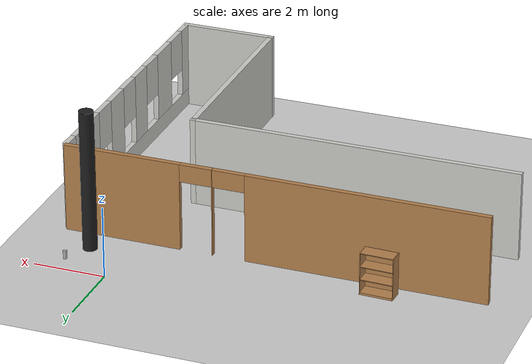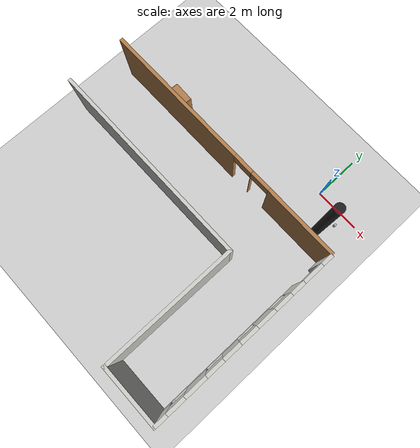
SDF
<sdf version="1.6">
 <world name="default">
  <model name="ground_plane">
   <static>1</static>
   <link name="link">
    <collision name="collision">
     <geometry><plane><normal>0 0 1</normal><size>100 100</size></plane></geometry>
     <surface><friction><ode><mu>100</mu><mu2>50</mu2></ode></friction></surface>
    </collision>
    <visual name="visual">
     <cast_shadows>0</cast_shadows>
     <geometry><plane><normal>0 0 1</normal><size>100 100</size></plane></geometry>
     <material>
      <script><uri>file://media/materials/scripts/gazebo.material</uri><name>Gazebo/Grey</name></script>
     </material>
    </visual>
   </link>
  </model>
  <model name="unit_cylinder">
   <link name="link">
    <inertial>
     <mass>1</mass>
     <inertia><ixx>0.145833</ixx><ixy>0</ixy><ixz>0</ixz><iyy>0.145833</iyy><iyz>0</iyz><izz>0.125</izz></inertia>
    </inertial>
    <visual name="visual">
     <geometry><cylinder><radius>0.2</radius><length>4</length></cylinder></geometry>
     <material>
      <script><name>Gazebo/Black</name><uri>file://media/materials/scripts/gazebo.material</uri></script>
      <shader type="pixel"><normal_map>__default__</normal_map></shader>
      <ambient>1 0 0.5 1</ambient>
      <diffuse>0.7 0.7 0.7 1</diffuse>
      <specular>0.01 0.01 0.01 1</specular>
      <emissive>0 0 0 1</emissive>
     </material>
    </visual>
    <collision name="collision">
     <geometry><cylinder><radius>0.2</radius><length>4</length></cylinder></geometry>
     <surface>
      <friction>
       <ode><mu>1</mu><mu2>1</mu2><fdir1>0 0 0</fdir1><slip1>0</slip1><slip2>0</slip2></ode>
       <torsional>
        <coefficient>1</coefficient>
        <patch_radius>0</patch_radius>
        <surface_radius>0</surface_radius>
        <use_patch_radius>1</use_patch_radius>
        <ode><slip>0</slip></ode>
       </torsional>
      </friction>
      <bounce><restitution_coefficient>0</restitution_coefficient><threshold>1e+06</threshold></bounce>
      <contact>
       <collide_without_contact>0</collide_without_contact>
       <collide_without_contact_bitmask>1</collide_without_contact_bitmask>
       <collide_bitmask>1</collide_bitmask>
       <ode>
        <soft_cfm>0</soft_cfm>
        <soft_erp>0.2</soft_erp>
        <kp>1e+13</kp>
        <kd>1</kd>
        <max_vel>0.01</max_vel>
        <min_depth>0</min_depth>
       </ode>
       <bullet>
        <split_impulse>1</split_impulse>
        <split_impulse_penetration_threshold>-0.01</split_impulse_penetration_threshold>
        <soft_cfm>0</soft_cfm>
        <soft_erp>0.2</soft_erp>
        <kp>1e+13</kp>
        <kd>1</kd>
       </bullet>
      </contact>
     </surface>
    </collision>
   </link>
   <static>0</static>
   <pose>0.988926 -1.30848 1.99999 0 0 -0.008875</pose>
  </model>
  <model name="building">
   <link name="Wall_34">
    <pose>5.85 -4.92523 0 0 0 -1.5708</pose>
    <visual name="Wall_34_Visual_1">
     <pose>-2.52841 0 1.25 0 -0 0</pose>
     <geometry><box><size>0.626669 0.15 2.5</size></box></geometry>
     <material>
      <script><uri>file://media/materials/scripts/gazebo.material</uri><name>Gazebo/CeilingTiled</name></script>
      <ambient>0 0 1 1</ambient>
      <shader type="pixel"/>
      <diffuse>1 1 1 1</diffuse>
      <specular>0 0 0 1</specular>
      <emissive>0 0 0 1</emissive>
     </material>
     <meta><layer>0</layer></meta>
    </visual>
    <visual name="Wall_34_Visual_8">
     <pose>-0.153819 0 1.9 0 -0 0</pose>
     <geometry><box><size>0.8 0.15 1.2</size></box></geometry>
     <material>
      <script><uri>file://media/materials/scripts/gazebo.material</uri><name>Gazebo/CeilingTiled</name></script>
      <ambient>0 0 1 1</ambient>
      <shader type="pixel"/>
      <diffuse>1 1 1 1</diffuse>
      <specular>0 0 0 1</specular>
      <emissive>0 0 0 1</emissive>
     </material>
     <meta><layer>0</layer></meta>
    </visual>
    <visual name="Wall_34_Visual_2">
     <pose>1.01746 0 0.25 0 -0 0</pose>
     <geometry><box><size>6.46507 0.15 0.5</size></box></geometry>
     <material>
      <script><uri>file://media/materials/scripts/gazebo.material</uri><name>Gazebo/CeilingTiled</name></script>
      <ambient>0 0 1 1</ambient>
      <shader type="pixel"/>
      <diffuse>1 1 1 1</diffuse>
      <specular>0 0 0 1</specular>
      <emissive>0 0 0 1</emissive>
     </material>
     <meta><layer>0</layer></meta>
    </visual>
    <visual name="Wall_34_Visual_9">
     <pose>1.44591 0 1.9 0 -0 0</pose>
     <geometry><box><size>0.8 0.15 1.2</size></box></geometry>
     <material>
      <script><uri>file://media/materials/scripts/gazebo.material</uri><name>Gazebo/CeilingTiled</name></script>
      <ambient>0 0 1 1</ambient>
      <shader type="pixel"/>
      <diffuse>1 1 1 1</diffuse>
      <specular>0 0 0 1</specular>
      <emissive>0 0 0 1</emissive>
     </material>
     <meta><layer>0</layer></meta>
    </visual>
    <visual name="Wall_34_Visual_5">
     <pose>2.33806 0 1.5 0 -0 0</pose>
     <geometry><box><size>0.984308 0.15 2</size></box></geometry>
     <material>
      <script><uri>file://media/materials/scripts/gazebo.material</uri><name>Gazebo/CeilingTiled</name></script>
      <ambient>0 0 1 1</ambient>
      <shader type="pixel"/>
      <diffuse>1 1 1 1</diffuse>
      <specular>0 0 0 1</specular>
      <emissive>0 0 0 1</emissive>
     </material>
     <meta><layer>0</layer></meta>
    </visual>
    <visual name="Wall_34_Visual_4">
     <pose>0.646044 0 1.5 0 -0 0</pose>
     <geometry><box><size>0.799725 0.15 2</size></box></geometry>
     <material>
      <script><uri>file://media/materials/scripts/gazebo.material</uri><name>Gazebo/CeilingTiled</name></script>
      <ambient>0 0 1 1</ambient>
      <shader type="pixel"/>
      <diffuse>1 1 1 1</diffuse>
      <specular>0 0 0 1</specular>
      <emissive>0 0 0 1</emissive>
     </material>
     <meta><layer>0</layer></meta>
    </visual>
    <visual name="Wall_34_Visual_10">
     <pose>3.23021 0 1.9 0 -0 0</pose>
     <geometry><box><size>0.8 0.15 1.2</size></box></geometry>
     <material>
      <script><uri>file://media/materials/scripts/gazebo.material</uri><name>Gazebo/CeilingTiled</name></script>
      <ambient>0 0 1 1</ambient>
      <shader type="pixel"/>
      <diffuse>1 1 1 1</diffuse>
      <specular>0 0 0 1</specular>
      <emissive>0 0 0 1</emissive>
     </material>
     <meta><layer>0</layer></meta>
    </visual>
    <visual name="Wall_34_Visual_11">
     <pose>-3.29174 0 2.25 0 -0 0</pose>
     <geometry><box><size>0.9 0.15 0.5</size></box></geometry>
     <material>
      <script><uri>file://media/materials/scripts/gazebo.material</uri><name>Gazebo/CeilingTiled</name></script>
      <ambient>0 0 1 1</ambient>
      <shader type="pixel"/>
      <diffuse>1 1 1 1</diffuse>
      <specular>0 0 0 1</specular>
      <emissive>0 0 0 1</emissive>
     </material>
     <meta><layer>0</layer></meta>
    </visual>
    <visual name="Wall_34_Visual_3">
     <pose>-0.984445 0 1.5 0 -0 0</pose>
     <geometry><box><size>0.861252 0.15 2</size></box></geometry>
     <material>
      <script><uri>file://media/materials/scripts/gazebo.material</uri><name>Gazebo/CeilingTiled</name></script>
      <ambient>0 0 1 1</ambient>
      <shader type="pixel"/>
      <diffuse>1 1 1 1</diffuse>
      <specular>0 0 0 1</specular>
      <emissive>0 0 0 1</emissive>
     </material>
     <meta><layer>0</layer></meta>
    </visual>
    <visual name="Wall_34_Visual_0">
     <pose>-3.99587 0 1.25 0 -0 0</pose>
     <geometry><box><size>0.50826 0.15 2.5</size></box></geometry>
     <material>
      <script><uri>file://media/materials/scripts/gazebo.material</uri><name>Gazebo/CeilingTiled</name></script>
      <ambient>0 0 1 1</ambient>
      <shader type="pixel"/>
      <diffuse>1 1 1 1</diffuse>
      <specular>0 0 0 1</specular>
      <emissive>0 0 0 1</emissive>
     </material>
     <meta><layer>0</layer></meta>
    </visual>
    <visual name="Wall_34_Visual_6">
     <pose>3.94011 0 1.5 0 -0 0</pose>
     <geometry><box><size>0.619785 0.15 2</size></box></geometry>
     <material>
      <script><uri>file://media/materials/scripts/gazebo.material</uri><name>Gazebo/CeilingTiled</name></script>
      <ambient>0 0 1 1</ambient>
      <shader type="pixel"/>
      <diffuse>1 1 1 1</diffuse>
      <specular>0 0 0 1</specular>
      <emissive>0 0 0 1</emissive>
     </material>
     <meta><layer>0</layer></meta>
    </visual>
    <visual name="Wall_34_Visual_7">
     <pose>-1.81507 0 1.9 0 -0 0</pose>
     <geometry><box><size>0.8 0.15 1.2</size></box></geometry>
     <material>
      <script><uri>file://media/materials/scripts/gazebo.material</uri><name>Gazebo/CeilingTiled</name></script>
      <ambient>0 0 1 1</ambient>
      <shader type="pixel"/>
      <diffuse>1 1 1 1</diffuse>
      <specular>0 0 0 1</specular>
      <emissive>0 0 0 1</emissive>
     </material>
     <meta><layer>0</layer></meta>
    </visual>
    <collision name="Wall_34_Collision_0">
     <pose>-3.99587 0 1.25 0 -0 0</pose>
     <geometry><box><size>0.50826 0.15 2.5</size></box></geometry>
     <surface>
      <friction>
       <ode><mu>1</mu><mu2>1</mu2><fdir1>0 0 0</fdir1><slip1>0</slip1><slip2>0</slip2></ode>
       <torsional>
        <coefficient>1</coefficient>
        <patch_radius>0</patch_radius>
        <surface_radius>0</surface_radius>
        <use_patch_radius>1</use_patch_radius>
        <ode><slip>0</slip></ode>
       </torsional>
      </friction>
      <bounce><restitution_coefficient>0</restitution_coefficient><threshold>1e+06</threshold></bounce>
      <contact>
       <collide_without_contact>0</collide_without_contact>
       <collide_without_contact_bitmask>1</collide_without_contact_bitmask>
       <collide_bitmask>1</collide_bitmask>
       <ode>
        <soft_cfm>0</soft_cfm>
        <soft_erp>0.2</soft_erp>
        <kp>1e+13</kp>
        <kd>1</kd>
        <max_vel>0.01</max_vel>
        <min_depth>0</min_depth>
       </ode>
       <bullet>
        <split_impulse>1</split_impulse>
        <split_impulse_penetration_threshold>-0.01</split_impulse_penetration_threshold>
        <soft_cfm>0</soft_cfm>
        <soft_erp>0.2</soft_erp>
        <kp>1e+13</kp>
        <kd>1</kd>
       </bullet>
      </contact>
     </surface>
    </collision>
    <collision name="Wall_34_Collision_5">
     <pose>2.33806 0 1.5 0 -0 0</pose>
     <geometry><box><size>0.984308 0.15 2</size></box></geometry>
     <surface>
      <friction>
       <ode><mu>1</mu><mu2>1</mu2><fdir1>0 0 0</fdir1><slip1>0</slip1><slip2>0</slip2></ode>
       <torsional>
        <coefficient>1</coefficient>
        <patch_radius>0</patch_radius>
        <surface_radius>0</surface_radius>
        <use_patch_radius>1</use_patch_radius>
        <ode><slip>0</slip></ode>
       </torsional>
      </friction>
      <bounce><restitution_coefficient>0</restitution_coefficient><threshold>1e+06</threshold></bounce>
      <contact>
       <collide_without_contact>0</collide_without_contact>
       <collide_without_contact_bitmask>1</collide_without_contact_bitmask>
       <collide_bitmask>1</collide_bitmask>
       <ode>
        <soft_cfm>0</soft_cfm>
        <soft_erp>0.2</soft_erp>
        <kp>1e+13</kp>
        <kd>1</kd>
        <max_vel>0.01</max_vel>
        <min_depth>0</min_depth>
       </ode>
       <bullet>
        <split_impulse>1</split_impulse>
        <split_impulse_penetration_threshold>-0.01</split_impulse_penetration_threshold>
        <soft_cfm>0</soft_cfm>
        <soft_erp>0.2</soft_erp>
        <kp>1e+13</kp>
        <kd>1</kd>
       </bullet>
      </contact>
     </surface>
    </collision>
    <collision name="Wall_34_Collision_1">
     <pose>-2.52841 0 1.25 0 -0 0</pose>
     <geometry><box><size>0.626669 0.15 2.5</size></box></geometry>
     <surface>
      <friction>
       <ode><mu>1</mu><mu2>1</mu2><fdir1>0 0 0</fdir1><slip1>0</slip1><slip2>0</slip2></ode>
       <torsional>
        <coefficient>1</coefficient>
        <patch_radius>0</patch_radius>
        <surface_radius>0</surface_radius>
        <use_patch_radius>1</use_patch_radius>
        <ode><slip>0</slip></ode>
       </torsional>
      </friction>
      <bounce><restitution_coefficient>0</restitution_coefficient><threshold>1e+06</threshold></bounce>
      <contact>
       <collide_without_contact>0</collide_without_contact>
       <collide_without_contact_bitmask>1</collide_without_contact_bitmask>
       <collide_bitmask>1</collide_bitmask>
       <ode>
        <soft_cfm>0</soft_cfm>
        <soft_erp>0.2</soft_erp>
        <kp>1e+13</kp>
        <kd>1</kd>
        <max_vel>0.01</max_vel>
        <min_depth>0</min_depth>
       </ode>
       <bullet>
        <split_impulse>1</split_impulse>
        <split_impulse_penetration_threshold>-0.01</split_impulse_penetration_threshold>
        <soft_cfm>0</soft_cfm>
        <soft_erp>0.2</soft_erp>
        <kp>1e+13</kp>
        <kd>1</kd>
       </bullet>
      </contact>
     </surface>
    </collision>
    <collision name="Wall_34_Collision_3">
     <pose>-0.984445 0 1.5 0 -0 0</pose>
     <geometry><box><size>0.861252 0.15 2</size></box></geometry>
     <surface>
      <friction>
       <ode><mu>1</mu><mu2>1</mu2><fdir1>0 0 0</fdir1><slip1>0</slip1><slip2>0</slip2></ode>
       <torsional>
        <coefficient>1</coefficient>
        <patch_radius>0</patch_radius>
        <surface_radius>0</surface_radius>
        <use_patch_radius>1</use_patch_radius>
        <ode><slip>0</slip></ode>
       </torsional>
      </friction>
      <bounce><restitution_coefficient>0</restitution_coefficient><threshold>1e+06</threshold></bounce>
      <contact>
       <collide_without_contact>0</collide_without_contact>
       <collide_without_contact_bitmask>1</collide_without_contact_bitmask>
       <collide_bitmask>1</collide_bitmask>
       <ode>
        <soft_cfm>0</soft_cfm>
        <soft_erp>0.2</soft_erp>
        <kp>1e+13</kp>
        <kd>1</kd>
        <max_vel>0.01</max_vel>
        <min_depth>0</min_depth>
       </ode>
       <bullet>
        <split_impulse>1</split_impulse>
        <split_impulse_penetration_threshold>-0.01</split_impulse_penetration_threshold>
        <soft_cfm>0</soft_cfm>
        <soft_erp>0.2</soft_erp>
        <kp>1e+13</kp>
        <kd>1</kd>
       </bullet>
      </contact>
     </surface>
    </collision>
    <collision name="Wall_34_Collision_10">
     <pose>3.23021 0 1.9 0 -0 0</pose>
     <geometry><box><size>0.8 0.15 1.2</size></box></geometry>
     <surface>
      <friction>
       <ode><mu>1</mu><mu2>1</mu2><fdir1>0 0 0</fdir1><slip1>0</slip1><slip2>0</slip2></ode>
       <torsional>
        <coefficient>1</coefficient>
        <patch_radius>0</patch_radius>
        <surface_radius>0</surface_radius>
        <use_patch_radius>1</use_patch_radius>
        <ode><slip>0</slip></ode>
       </torsional>
      </friction>
      <bounce><restitution_coefficient>0</restitution_coefficient><threshold>1e+06</threshold></bounce>
      <contact>
       <collide_without_contact>0</collide_without_contact>
       <collide_without_contact_bitmask>1</collide_without_contact_bitmask>
       <collide_bitmask>1</collide_bitmask>
       <ode>
        <soft_cfm>0</soft_cfm>
        <soft_erp>0.2</soft_erp>
        <kp>1e+13</kp>
        <kd>1</kd>
        <max_vel>0.01</max_vel>
        <min_depth>0</min_depth>
       </ode>
       <bullet>
        <split_impulse>1</split_impulse>
        <split_impulse_penetration_threshold>-0.01</split_impulse_penetration_threshold>
        <soft_cfm>0</soft_cfm>
        <soft_erp>0.2</soft_erp>
        <kp>1e+13</kp>
        <kd>1</kd>
       </bullet>
      </contact>
     </surface>
    </collision>
    <collision name="Wall_34_Collision_4">
     <pose>0.646044 0 1.5 0 -0 0</pose>
     <geometry><box><size>0.799725 0.15 2</size></box></geometry>
     <surface>
      <friction>
       <ode><mu>1</mu><mu2>1</mu2><fdir1>0 0 0</fdir1><slip1>0</slip1><slip2>0</slip2></ode>
       <torsional>
        <coefficient>1</coefficient>
        <patch_radius>0</patch_radius>
        <surface_radius>0</surface_radius>
        <use_patch_radius>1</use_patch_radius>
        <ode><slip>0</slip></ode>
       </torsional>
      </friction>
      <bounce><restitution_coefficient>0</restitution_coefficient><threshold>1e+06</threshold></bounce>
      <contact>
       <collide_without_contact>0</collide_without_contact>
       <collide_without_contact_bitmask>1</collide_without_contact_bitmask>
       <collide_bitmask>1</collide_bitmask>
       <ode>
        <soft_cfm>0</soft_cfm>
        <soft_erp>0.2</soft_erp>
        <kp>1e+13</kp>
        <kd>1</kd>
        <max_vel>0.01</max_vel>
        <min_depth>0</min_depth>
       </ode>
       <bullet>
        <split_impulse>1</split_impulse>
        <split_impulse_penetration_threshold>-0.01</split_impulse_penetration_threshold>
        <soft_cfm>0</soft_cfm>
        <soft_erp>0.2</soft_erp>
        <kp>1e+13</kp>
        <kd>1</kd>
       </bullet>
      </contact>
     </surface>
    </collision>
    <collision name="Wall_34_Collision_11">
     <pose>-3.29174 0 2.25 0 -0 0</pose>
     <geometry><box><size>0.9 0.15 0.5</size></box></geometry>
     <surface>
      <friction>
       <ode><mu>1</mu><mu2>1</mu2><fdir1>0 0 0</fdir1><slip1>0</slip1><slip2>0</slip2></ode>
       <torsional>
        <coefficient>1</coefficient>
        <patch_radius>0</patch_radius>
        <surface_radius>0</surface_radius>
        <use_patch_radius>1</use_patch_radius>
        <ode><slip>0</slip></ode>
       </torsional>
      </friction>
      <bounce><restitution_coefficient>0</restitution_coefficient><threshold>1e+06</threshold></bounce>
      <contact>
       <collide_without_contact>0</collide_without_contact>
       <collide_without_contact_bitmask>1</collide_without_contact_bitmask>
       <collide_bitmask>1</collide_bitmask>
       <ode>
        <soft_cfm>0</soft_cfm>
        <soft_erp>0.2</soft_erp>
        <kp>1e+13</kp>
        <kd>1</kd>
        <max_vel>0.01</max_vel>
        <min_depth>0</min_depth>
       </ode>
       <bullet>
        <split_impulse>1</split_impulse>
        <split_impulse_penetration_threshold>-0.01</split_impulse_penetration_threshold>
        <soft_cfm>0</soft_cfm>
        <soft_erp>0.2</soft_erp>
        <kp>1e+13</kp>
        <kd>1</kd>
       </bullet>
      </contact>
     </surface>
    </collision>
    <collision name="Wall_34_Collision_8">
     <pose>-0.153819 0 1.9 0 -0 0</pose>
     <geometry><box><size>0.8 0.15 1.2</size></box></geometry>
     <surface>
      <friction>
       <ode><mu>1</mu><mu2>1</mu2><fdir1>0 0 0</fdir1><slip1>0</slip1><slip2>0</slip2></ode>
       <torsional>
        <coefficient>1</coefficient>
        <patch_radius>0</patch_radius>
        <surface_radius>0</surface_radius>
        <use_patch_radius>1</use_patch_radius>
        <ode><slip>0</slip></ode>
       </torsional>
      </friction>
      <bounce><restitution_coefficient>0</restitution_coefficient><threshold>1e+06</threshold></bounce>
      <contact>
       <collide_without_contact>0</collide_without_contact>
       <collide_without_contact_bitmask>1</collide_without_contact_bitmask>
       <collide_bitmask>1</collide_bitmask>
       <ode>
        <soft_cfm>0</soft_cfm>
        <soft_erp>0.2</soft_erp>
        <kp>1e+13</kp>
        <kd>1</kd>
        <max_vel>0.01</max_vel>
        <min_depth>0</min_depth>
       </ode>
       <bullet>
        <split_impulse>1</split_impulse>
        <split_impulse_penetration_threshold>-0.01</split_impulse_penetration_threshold>
        <soft_cfm>0</soft_cfm>
        <soft_erp>0.2</soft_erp>
        <kp>1e+13</kp>
        <kd>1</kd>
       </bullet>
      </contact>
     </surface>
    </collision>
    <collision name="Wall_34_Collision_2">
     <pose>1.01746 0 0.25 0 -0 0</pose>
     <geometry><box><size>6.46507 0.15 0.5</size></box></geometry>
     <surface>
      <friction>
       <ode><mu>1</mu><mu2>1</mu2><fdir1>0 0 0</fdir1><slip1>0</slip1><slip2>0</slip2></ode>
       <torsional>
        <coefficient>1</coefficient>
        <patch_radius>0</patch_radius>
        <surface_radius>0</surface_radius>
        <use_patch_radius>1</use_patch_radius>
        <ode><slip>0</slip></ode>
       </torsional>
      </friction>
      <bounce><restitution_coefficient>0</restitution_coefficient><threshold>1e+06</threshold></bounce>
      <contact>
       <collide_without_contact>0</collide_without_contact>
       <collide_without_contact_bitmask>1</collide_without_contact_bitmask>
       <collide_bitmask>1</collide_bitmask>
       <ode>
        <soft_cfm>0</soft_cfm>
        <soft_erp>0.2</soft_erp>
        <kp>1e+13</kp>
        <kd>1</kd>
        <max_vel>0.01</max_vel>
        <min_depth>0</min_depth>
       </ode>
       <bullet>
        <split_impulse>1</split_impulse>
        <split_impulse_penetration_threshold>-0.01</split_impulse_penetration_threshold>
        <soft_cfm>0</soft_cfm>
        <soft_erp>0.2</soft_erp>
        <kp>1e+13</kp>
        <kd>1</kd>
       </bullet>
      </contact>
     </surface>
    </collision>
    <collision name="Wall_34_Collision_6">
     <pose>3.94011 0 1.5 0 -0 0</pose>
     <geometry><box><size>0.619785 0.15 2</size></box></geometry>
     <surface>
      <friction>
       <ode><mu>1</mu><mu2>1</mu2><fdir1>0 0 0</fdir1><slip1>0</slip1><slip2>0</slip2></ode>
       <torsional>
        <coefficient>1</coefficient>
        <patch_radius>0</patch_radius>
        <surface_radius>0</surface_radius>
        <use_patch_radius>1</use_patch_radius>
        <ode><slip>0</slip></ode>
       </torsional>
      </friction>
      <bounce><restitution_coefficient>0</restitution_coefficient><threshold>1e+06</threshold></bounce>
      <contact>
       <collide_without_contact>0</collide_without_contact>
       <collide_without_contact_bitmask>1</collide_without_contact_bitmask>
       <collide_bitmask>1</collide_bitmask>
       <ode>
        <soft_cfm>0</soft_cfm>
        <soft_erp>0.2</soft_erp>
        <kp>1e+13</kp>
        <kd>1</kd>
        <max_vel>0.01</max_vel>
        <min_depth>0</min_depth>
       </ode>
       <bullet>
        <split_impulse>1</split_impulse>
        <split_impulse_penetration_threshold>-0.01</split_impulse_penetration_threshold>
        <soft_cfm>0</soft_cfm>
        <soft_erp>0.2</soft_erp>
        <kp>1e+13</kp>
        <kd>1</kd>
       </bullet>
      </contact>
     </surface>
    </collision>
    <collision name="Wall_34_Collision_9">
     <pose>1.44591 0 1.9 0 -0 0</pose>
     <geometry><box><size>0.8 0.15 1.2</size></box></geometry>
     <surface>
      <friction>
       <ode><mu>1</mu><mu2>1</mu2><fdir1>0 0 0</fdir1><slip1>0</slip1><slip2>0</slip2></ode>
       <torsional>
        <coefficient>1</coefficient>
        <patch_radius>0</patch_radius>
        <surface_radius>0</surface_radius>
        <use_patch_radius>1</use_patch_radius>
        <ode><slip>0</slip></ode>
       </torsional>
      </friction>
      <bounce><restitution_coefficient>0</restitution_coefficient><threshold>1e+06</threshold></bounce>
      <contact>
       <collide_without_contact>0</collide_without_contact>
       <collide_without_contact_bitmask>1</collide_without_contact_bitmask>
       <collide_bitmask>1</collide_bitmask>
       <ode>
        <soft_cfm>0</soft_cfm>
        <soft_erp>0.2</soft_erp>
        <kp>1e+13</kp>
        <kd>1</kd>
        <max_vel>0.01</max_vel>
        <min_depth>0</min_depth>
       </ode>
       <bullet>
        <split_impulse>1</split_impulse>
        <split_impulse_penetration_threshold>-0.01</split_impulse_penetration_threshold>
        <soft_cfm>0</soft_cfm>
        <soft_erp>0.2</soft_erp>
        <kp>1e+13</kp>
        <kd>1</kd>
       </bullet>
      </contact>
     </surface>
    </collision>
    <collision name="Wall_34_Collision_7">
     <pose>-1.81507 0 1.9 0 -0 0</pose>
     <geometry><box><size>0.8 0.15 1.2</size></box></geometry>
     <surface>
      <friction>
       <ode><mu>1</mu><mu2>1</mu2><fdir1>0 0 0</fdir1><slip1>0</slip1><slip2>0</slip2></ode>
       <torsional>
        <coefficient>1</coefficient>
        <patch_radius>0</patch_radius>
        <surface_radius>0</surface_radius>
        <use_patch_radius>1</use_patch_radius>
        <ode><slip>0</slip></ode>
       </torsional>
      </friction>
      <bounce><restitution_coefficient>0</restitution_coefficient><threshold>1e+06</threshold></bounce>
      <contact>
       <collide_without_contact>0</collide_without_contact>
       <collide_without_contact_bitmask>1</collide_without_contact_bitmask>
       <collide_bitmask>1</collide_bitmask>
       <ode>
        <soft_cfm>0</soft_cfm>
        <soft_erp>0.2</soft_erp>
        <kp>1e+13</kp>
        <kd>1</kd>
        <max_vel>0.01</max_vel>
        <min_depth>0</min_depth>
       </ode>
       <bullet>
        <split_impulse>1</split_impulse>
        <split_impulse_penetration_threshold>-0.01</split_impulse_penetration_threshold>
        <soft_cfm>0</soft_cfm>
        <soft_erp>0.2</soft_erp>
        <kp>1e+13</kp>
        <kd>1</kd>
       </bullet>
      </contact>
     </surface>
    </collision>
   </link>
   <link name="Wall_36">
    <pose>4.55 -9.10023 0 0 -0 3.14159</pose>
    <visual name="Wall_36_Visual">
     <pose>0 0 1.25 0 -0 0</pose>
     <geometry><box><size>2.75 0.15 2.5</size></box></geometry>
     <material>
      <script><uri>file://media/materials/scripts/gazebo.material</uri><name>Gazebo/CeilingTiled</name></script>
      <ambient>0 0 1 1</ambient>
      <shader type="pixel"/>
      <diffuse>1 1 1 1</diffuse>
      <specular>0 0 0 1</specular>
      <emissive>0 0 0 1</emissive>
     </material>
     <meta><layer>0</layer></meta>
    </visual>
    <collision name="Wall_36_Collision">
     <pose>0 0 1.25 0 -0 0</pose>
     <geometry><box><size>2.75 0.15 2.5</size></box></geometry>
     <surface>
      <friction>
       <ode><mu>1</mu><mu2>1</mu2><fdir1>0 0 0</fdir1><slip1>0</slip1><slip2>0</slip2></ode>
       <torsional>
        <coefficient>1</coefficient>
        <patch_radius>0</patch_radius>
        <surface_radius>0</surface_radius>
        <use_patch_radius>1</use_patch_radius>
        <ode><slip>0</slip></ode>
       </torsional>
      </friction>
      <bounce><restitution_coefficient>0</restitution_coefficient><threshold>1e+06</threshold></bounce>
      <contact>
       <collide_without_contact>0</collide_without_contact>
       <collide_without_contact_bitmask>1</collide_without_contact_bitmask>
       <collide_bitmask>1</collide_bitmask>
       <ode>
        <soft_cfm>0</soft_cfm>
        <soft_erp>0.2</soft_erp>
        <kp>1e+13</kp>
        <kd>1</kd>
        <max_vel>0.01</max_vel>
        <min_depth>0</min_depth>
       </ode>
       <bullet>
        <split_impulse>1</split_impulse>
        <split_impulse_penetration_threshold>-0.01</split_impulse_penetration_threshold>
        <soft_cfm>0</soft_cfm>
        <soft_erp>0.2</soft_erp>
        <kp>1e+13</kp>
        <kd>1</kd>
       </bullet>
      </contact>
     </surface>
    </collision>
   </link>
   <link name="Wall_37">
    <pose>3.25 -6.17523 0 0 -0 1.5708</pose>
    <visual name="Wall_37_Visual">
     <pose>0 0 1.25 0 -0 0</pose>
     <geometry><box><size>6 0.15 2.5</size></box></geometry>
     <material>
      <script><uri>file://media/materials/scripts/gazebo.material</uri><name>Gazebo/CeilingTiled</name></script>
      <ambient>0 0 1 1</ambient>
      <shader type="pixel"/>
      <diffuse>1 1 1 1</diffuse>
      <specular>0 0 0 1</specular>
      <emissive>0 0 0 1</emissive>
     </material>
     <meta><layer>0</layer></meta>
    </visual>
    <collision name="Wall_37_Collision">
     <pose>0 0 1.25 0 -0 0</pose>
     <geometry><box><size>6 0.15 2.5</size></box></geometry>
     <surface>
      <friction>
       <ode><mu>1</mu><mu2>1</mu2><fdir1>0 0 0</fdir1><slip1>0</slip1><slip2>0</slip2></ode>
       <torsional>
        <coefficient>1</coefficient>
        <patch_radius>0</patch_radius>
        <surface_radius>0</surface_radius>
        <use_patch_radius>1</use_patch_radius>
        <ode><slip>0</slip></ode>
       </torsional>
      </friction>
      <bounce><restitution_coefficient>0</restitution_coefficient><threshold>1e+06</threshold></bounce>
      <contact>
       <collide_without_contact>0</collide_without_contact>
       <collide_without_contact_bitmask>1</collide_without_contact_bitmask>
       <collide_bitmask>1</collide_bitmask>
       <ode>
        <soft_cfm>0</soft_cfm>
        <soft_erp>0.2</soft_erp>
        <kp>1e+13</kp>
        <kd>1</kd>
        <max_vel>0.01</max_vel>
        <min_depth>0</min_depth>
       </ode>
       <bullet>
        <split_impulse>1</split_impulse>
        <split_impulse_penetration_threshold>-0.01</split_impulse_penetration_threshold>
        <soft_cfm>0</soft_cfm>
        <soft_erp>0.2</soft_erp>
        <kp>1e+13</kp>
        <kd>1</kd>
       </bullet>
      </contact>
     </surface>
    </collision>
   </link>
   <link name="Wall_38">
    <pose>-1.3 -3.25023 0 0 -0 3.14159</pose>
    <visual name="Wall_38_Visual">
     <pose>0 0 1.25 0 -0 0</pose>
     <geometry><box><size>9.25 0.15 2.5</size></box></geometry>
     <material>
      <script><uri>file://media/materials/scripts/gazebo.material</uri><name>Gazebo/CeilingTiled</name></script>
      <ambient>0 0 1 1</ambient>
      <shader type="pixel"/>
      <diffuse>1 1 1 1</diffuse>
      <specular>0 0 0 1</specular>
      <emissive>0 0 0 1</emissive>
     </material>
     <meta><layer>0</layer></meta>
    </visual>
    <collision name="Wall_38_Collision">
     <pose>0 0 1.25 0 -0 0</pose>
     <geometry><box><size>9.25 0.15 2.5</size></box></geometry>
     <surface>
      <friction>
       <ode><mu>1</mu><mu2>1</mu2><fdir1>0 0 0</fdir1><slip1>0</slip1><slip2>0</slip2></ode>
       <torsional>
        <coefficient>1</coefficient>
        <patch_radius>0</patch_radius>
        <surface_radius>0</surface_radius>
        <use_patch_radius>1</use_patch_radius>
        <ode><slip>0</slip></ode>
       </torsional>
      </friction>
      <bounce><restitution_coefficient>0</restitution_coefficient><threshold>1e+06</threshold></bounce>
      <contact>
       <collide_without_contact>0</collide_without_contact>
       <collide_without_contact_bitmask>1</collide_without_contact_bitmask>
       <collide_bitmask>1</collide_bitmask>
       <ode>
        <soft_cfm>0</soft_cfm>
        <soft_erp>0.2</soft_erp>
        <kp>1e+13</kp>
        <kd>1</kd>
        <max_vel>0.01</max_vel>
        <min_depth>0</min_depth>
       </ode>
       <bullet>
        <split_impulse>1</split_impulse>
        <split_impulse_penetration_threshold>-0.01</split_impulse_penetration_threshold>
        <soft_cfm>0</soft_cfm>
        <soft_erp>0.2</soft_erp>
        <kp>1e+13</kp>
        <kd>1</kd>
       </bullet>
      </contact>
     </surface>
    </collision>
   </link>
   <link name="Wall_47">
    <pose>-0.018122 -0.649042 0 0 -0 0</pose>
    <inertial>
     <mass>1</mass>
     <inertia><ixx>1</ixx><ixy>0</ixy><ixz>0</ixz><iyy>1</iyy><iyz>0</iyz><izz>1</izz></inertia>
    </inertial>
    <visual name="Wall_47_Visual_4">
     <pose>2.1371 0 2.25 0 -0 0</pose>
     <geometry><box><size>0.9 0.15 0.5</size></box></geometry>
     <material>
      <script><uri>file://media/materials/scripts/gazebo.material</uri><name>Gazebo/Wood</name></script>
      <ambient>0 1 1 1</ambient>
      <shader type="pixel"><normal_map>__default__</normal_map></shader>
      <diffuse>1 1 1 1</diffuse>
      <specular>0.2 0.2 0.2 1</specular>
      <emissive>0 0 0 1</emissive>
     </material>
     <meta><layer>0</layer></meta>
    </visual>
    <visual name="Wall_47_Visual_1">
     <pose>1.67564 0 1.25 0 -0 0</pose>
     <geometry><box><size>0.022918 0.15 2.5</size></box></geometry>
     <material>
      <script><uri>file://media/materials/scripts/gazebo.material</uri><name>Gazebo/Wood</name></script>
      <ambient>0 1 1 1</ambient>
      <shader type="pixel"><normal_map>__default__</normal_map></shader>
      <diffuse>1 1 1 1</diffuse>
      <specular>0.2 0.2 0.2 1</specular>
      <emissive>0 0 0 1</emissive>
     </material>
     <meta><layer>0</layer></meta>
    </visual>
    <visual name="Wall_47_Visual_0">
     <pose>-2.55541 0 1.25 0 -0 0</pose>
     <geometry><box><size>6.63918 0.15 2.5</size></box></geometry>
     <material>
      <script><uri>file://media/materials/scripts/gazebo.material</uri><name>Gazebo/Wood</name></script>
      <ambient>0 1 1 1</ambient>
      <shader type="pixel"><normal_map>__default__</normal_map></shader>
      <diffuse>1 1 1 1</diffuse>
      <specular>0.2 0.2 0.2 1</specular>
      <emissive>0 0 0 1</emissive>
     </material>
     <meta><layer>0</layer></meta>
    </visual>
    <visual name="Wall_47_Visual_2">
     <pose>4.23105 0 1.25 0 -0 0</pose>
     <geometry><box><size>3.2879 0.15 2.5</size></box></geometry>
     <material>
      <script><uri>file://media/materials/scripts/gazebo.material</uri><name>Gazebo/Wood</name></script>
      <ambient>0 1 1 1</ambient>
      <shader type="pixel"><normal_map>__default__</normal_map></shader>
      <diffuse>1 1 1 1</diffuse>
      <specular>0.2 0.2 0.2 1</specular>
      <emissive>0 0 0 1</emissive>
     </material>
     <meta><layer>0</layer></meta>
    </visual>
    <visual name="Wall_47_Visual_3">
     <pose>1.21418 0 2.25 0 -0 0</pose>
     <geometry><box><size>0.9 0.15 0.5</size></box></geometry>
     <material>
      <script><uri>file://media/materials/scripts/gazebo.material</uri><name>Gazebo/Wood</name></script>
      <ambient>0 1 1 1</ambient>
      <shader type="pixel"><normal_map>__default__</normal_map></shader>
      <diffuse>1 1 1 1</diffuse>
      <specular>0.2 0.2 0.2 1</specular>
      <emissive>0 0 0 1</emissive>
     </material>
     <meta><layer>0</layer></meta>
    </visual>
    <collision name="Wall_47_Collision_2">
     <pose>4.23105 0 1.25 0 -0 0</pose>
     <geometry><box><size>3.2879 0.15 2.5</size></box></geometry>
     <surface>
      <friction>
       <ode><mu>1</mu><mu2>1</mu2><fdir1>0 0 0</fdir1><slip1>0</slip1><slip2>0</slip2></ode>
       <torsional>
        <coefficient>1</coefficient>
        <patch_radius>0</patch_radius>
        <surface_radius>0</surface_radius>
        <use_patch_radius>1</use_patch_radius>
        <ode><slip>0</slip></ode>
       </torsional>
      </friction>
      <bounce><restitution_coefficient>0</restitution_coefficient><threshold>1e+06</threshold></bounce>
      <contact>
       <collide_without_contact>0</collide_without_contact>
       <collide_without_contact_bitmask>1</collide_without_contact_bitmask>
       <collide_bitmask>1</collide_bitmask>
       <ode>
        <soft_cfm>0</soft_cfm>
        <soft_erp>0.2</soft_erp>
        <kp>1e+13</kp>
        <kd>1</kd>
        <max_vel>0.01</max_vel>
        <min_depth>0</min_depth>
       </ode>
       <bullet>
        <split_impulse>1</split_impulse>
        <split_impulse_penetration_threshold>-0.01</split_impulse_penetration_threshold>
        <soft_cfm>0</soft_cfm>
        <soft_erp>0.2</soft_erp>
        <kp>1e+13</kp>
        <kd>1</kd>
       </bullet>
      </contact>
     </surface>
    </collision>
    <collision name="Wall_47_Collision_4">
     <pose>2.1371 0 2.25 0 -0 0</pose>
     <geometry><box><size>0.9 0.15 0.5</size></box></geometry>
     <surface>
      <friction>
       <ode><mu>1</mu><mu2>1</mu2><fdir1>0 0 0</fdir1><slip1>0</slip1><slip2>0</slip2></ode>
       <torsional>
        <coefficient>1</coefficient>
        <patch_radius>0</patch_radius>
        <surface_radius>0</surface_radius>
        <use_patch_radius>1</use_patch_radius>
        <ode><slip>0</slip></ode>
       </torsional>
      </friction>
      <bounce><restitution_coefficient>0</restitution_coefficient><threshold>1e+06</threshold></bounce>
      <contact>
       <collide_without_contact>0</collide_without_contact>
       <collide_without_contact_bitmask>1</collide_without_contact_bitmask>
       <collide_bitmask>1</collide_bitmask>
       <ode>
        <soft_cfm>0</soft_cfm>
        <soft_erp>0.2</soft_erp>
        <kp>1e+13</kp>
        <kd>1</kd>
        <max_vel>0.01</max_vel>
        <min_depth>0</min_depth>
       </ode>
       <bullet>
        <split_impulse>1</split_impulse>
        <split_impulse_penetration_threshold>-0.01</split_impulse_penetration_threshold>
        <soft_cfm>0</soft_cfm>
        <soft_erp>0.2</soft_erp>
        <kp>1e+13</kp>
        <kd>1</kd>
       </bullet>
      </contact>
     </surface>
    </collision>
    <collision name="Wall_47_Collision_3">
     <pose>1.21418 0 2.25 0 -0 0</pose>
     <geometry><box><size>0.9 0.15 0.5</size></box></geometry>
     <surface>
      <friction>
       <ode><mu>1</mu><mu2>1</mu2><fdir1>0 0 0</fdir1><slip1>0</slip1><slip2>0</slip2></ode>
       <torsional>
        <coefficient>1</coefficient>
        <patch_radius>0</patch_radius>
        <surface_radius>0</surface_radius>
        <use_patch_radius>1</use_patch_radius>
        <ode><slip>0</slip></ode>
       </torsional>
      </friction>
      <bounce><restitution_coefficient>0</restitution_coefficient><threshold>1e+06</threshold></bounce>
      <contact>
       <collide_without_contact>0</collide_without_contact>
       <collide_without_contact_bitmask>1</collide_without_contact_bitmask>
       <collide_bitmask>1</collide_bitmask>
       <ode>
        <soft_cfm>0</soft_cfm>
        <soft_erp>0.2</soft_erp>
        <kp>1e+13</kp>
        <kd>1</kd>
        <max_vel>0.01</max_vel>
        <min_depth>0</min_depth>
       </ode>
       <bullet>
        <split_impulse>1</split_impulse>
        <split_impulse_penetration_threshold>-0.01</split_impulse_penetration_threshold>
        <soft_cfm>0</soft_cfm>
        <soft_erp>0.2</soft_erp>
        <kp>1e+13</kp>
        <kd>1</kd>
       </bullet>
      </contact>
     </surface>
    </collision>
    <collision name="Wall_47_Collision_0">
     <pose>-2.55541 0 1.25 0 -0 0</pose>
     <geometry><box><size>6.63918 0.15 2.5</size></box></geometry>
     <surface>
      <friction>
       <ode><mu>1</mu><mu2>1</mu2><fdir1>0 0 0</fdir1><slip1>0</slip1><slip2>0</slip2></ode>
       <torsional>
        <coefficient>1</coefficient>
        <patch_radius>0</patch_radius>
        <surface_radius>0</surface_radius>
        <use_patch_radius>1</use_patch_radius>
        <ode><slip>0</slip></ode>
       </torsional>
      </friction>
      <bounce><restitution_coefficient>0</restitution_coefficient><threshold>1e+06</threshold></bounce>
      <contact>
       <collide_without_contact>0</collide_without_contact>
       <collide_without_contact_bitmask>1</collide_without_contact_bitmask>
       <collide_bitmask>1</collide_bitmask>
       <ode>
        <soft_cfm>0</soft_cfm>
        <soft_erp>0.2</soft_erp>
        <kp>1e+13</kp>
        <kd>1</kd>
        <max_vel>0.01</max_vel>
        <min_depth>0</min_depth>
       </ode>
       <bullet>
        <split_impulse>1</split_impulse>
        <split_impulse_penetration_threshold>-0.01</split_impulse_penetration_threshold>
        <soft_cfm>0</soft_cfm>
        <soft_erp>0.2</soft_erp>
        <kp>1e+13</kp>
        <kd>1</kd>
       </bullet>
      </contact>
     </surface>
    </collision>
    <collision name="Wall_47_Collision_1">
     <pose>1.67564 0 1.25 0 -0 0</pose>
     <geometry><box><size>0.022918 0.15 2.5</size></box></geometry>
     <surface>
      <friction>
       <ode><mu>1</mu><mu2>1</mu2><fdir1>0 0 0</fdir1><slip1>0</slip1><slip2>0</slip2></ode>
       <torsional>
        <coefficient>1</coefficient>
        <patch_radius>0</patch_radius>
        <surface_radius>0</surface_radius>
        <use_patch_radius>1</use_patch_radius>
        <ode><slip>0</slip></ode>
       </torsional>
      </friction>
      <bounce><restitution_coefficient>0</restitution_coefficient><threshold>1e+06</threshold></bounce>
      <contact>
       <collide_without_contact>0</collide_without_contact>
       <collide_without_contact_bitmask>1</collide_without_contact_bitmask>
       <collide_bitmask>1</collide_bitmask>
       <ode>
        <soft_cfm>0</soft_cfm>
        <soft_erp>0.2</soft_erp>
        <kp>1e+13</kp>
        <kd>1</kd>
        <max_vel>0.01</max_vel>
        <min_depth>0</min_depth>
       </ode>
       <bullet>
        <split_impulse>1</split_impulse>
        <split_impulse_penetration_threshold>-0.01</split_impulse_penetration_threshold>
        <soft_cfm>0</soft_cfm>
        <soft_erp>0.2</soft_erp>
        <kp>1e+13</kp>
        <kd>1</kd>
       </bullet>
      </contact>
     </surface>
    </collision>
   </link>
   <static>1</static>
   <pose>-3.83214 -1.50097 0 0 -0 0</pose>
  </model>
  <model name="bookshelf_1">
   <static>1</static>
   <link name="link">
    <inertial><mass>1</mass></inertial>
    <collision name="back">
     <pose>0 0.005 0.6 0 -0 0</pose>
     <geometry><box><size>0.9 0.01 1.2</size></box></geometry>
    </collision>
    <visual name="visual1">
     <pose>0 0.005 0.6 0 -0 0</pose>
     <geometry><box><size>0.9 0.01 1.2</size></box></geometry>
     <material>
      <script><uri>file://media/materials/scripts/gazebo.material</uri><name>Gazebo/Wood</name></script>
     </material>
    </visual>
    <collision name="left_side">
     <pose>0.45 -0.195 0.6 0 -0 0</pose>
     <geometry><box><size>0.02 0.4 1.2</size></box></geometry>
    </collision>
    <visual name="visual2">
     <pose>0.45 -0.195 0.6 0 -0 0</pose>
     <geometry><box><size>0.02 0.4 1.2</size></box></geometry>
     <material>
      <script><uri>file://media/materials/scripts/gazebo.material</uri><name>Gazebo/Wood</name></script>
     </material>
    </visual>
    <collision name="right_side">
     <pose>-0.45 -0.195 0.6 0 -0 0</pose>
     <geometry><box><size>0.02 0.4 1.2</size></box></geometry>
    </collision>
    <visual name="visual3">
     <pose>-0.45 -0.195 0.6 0 -0 0</pose>
     <geometry><box><size>0.02 0.4 1.2</size></box></geometry>
     <material>
      <script><uri>file://media/materials/scripts/gazebo.material</uri><name>Gazebo/Wood</name></script>
     </material>
    </visual>
    <collision name="bottom">
     <pose>0 -0.195 0.03 0 -0 0</pose>
     <geometry><box><size>0.88 0.4 0.06</size></box></geometry>
    </collision>
    <visual name="visual4">
     <pose>0 -0.195 0.03 0 -0 0</pose>
     <geometry><box><size>0.88 0.4 0.06</size></box></geometry>
     <material>
      <script><uri>file://media/materials/scripts/gazebo.material</uri><name>Gazebo/Wood</name></script>
     </material>
    </visual>
    <collision name="top">
     <pose>0 -0.195 1.19 0 -0 0</pose>
     <geometry><box><size>0.88 0.4 0.02</size></box></geometry>
    </collision>
    <visual name="visual5">
     <pose>0 -0.195 1.19 0 -0 0</pose>
     <geometry><box><size>0.88 0.4 0.02</size></box></geometry>
     <material>
      <script><uri>file://media/materials/scripts/gazebo.material</uri><name>Gazebo/Wood</name></script>
     </material>
    </visual>
    <collision name="low_shelf">
     <pose>0 -0.195 0.43 0 -0 0</pose>
     <geometry><box><size>0.88 0.4 0.02</size></box></geometry>
    </collision>
    <visual name="visual6">
     <pose>0 -0.195 0.43 0 -0 0</pose>
     <geometry><box><size>0.88 0.4 0.02</size></box></geometry>
     <material>
      <script><uri>file://media/materials/scripts/gazebo.material</uri><name>Gazebo/Wood</name></script>
     </material>
    </visual>
    <collision name="high_shelf">
     <pose>0 -0.195 0.8 0 -0 0</pose>
     <geometry><box><size>0.88 0.4 0.02</size></box></geometry>
    </collision>
    <visual name="visual7">
     <pose>0 -0.195 0.8 0 -0 0</pose>
     <geometry><box><size>0.88 0.4 0.02</size></box></geometry>
     <material>
      <script><uri>file://media/materials/scripts/gazebo.material</uri><name>Gazebo/Wood</name></script>
     </material>
    </visual>
   </link>
   <pose>-6.941 -1.82431 0 0 -0 3.10696</pose>
  </model>
  <model name="beer_1">
   <link name="link">
    <pose>0 0 0.115 0 -0 0</pose>
    <inertial>
     <mass>0.39</mass>
     <inertia><ixx>0.00058</ixx><ixy>0</ixy><ixz>0</ixz><iyy>0.00058</iyy><iyz>0</iyz><izz>0.00019</izz></inertia>
    </inertial>
    <collision name="collision">
     <geometry><cylinder><radius>0.055</radius><length>0.23</length></cylinder></geometry>
    </collision>
    <visual name="visual">
     <geometry><cylinder><radius>0.055</radius><length>0.23</length></cylinder></geometry>
     <material>
      <script>
       <uri>model://beer/materials/scripts</uri>
       <uri>model://beer/materials/textures</uri>
       <name>Beer/Diffuse</name>
      </script>
     </material>
    </visual>
   </link>
   <pose>1.37627 -0.566938 -7e-06 -1e-06 0 -1e-05</pose>
  </model>
 </world>
</sdf>
